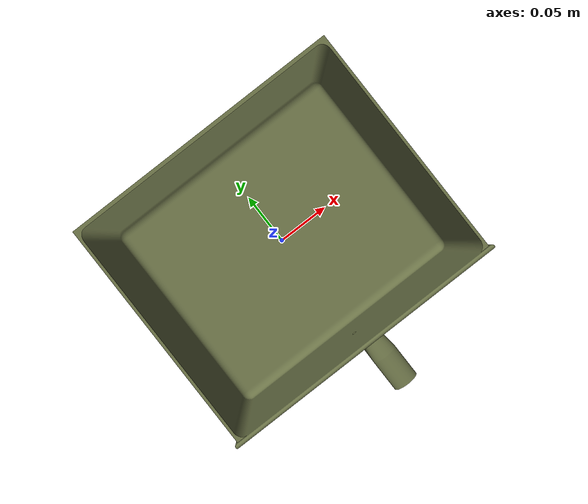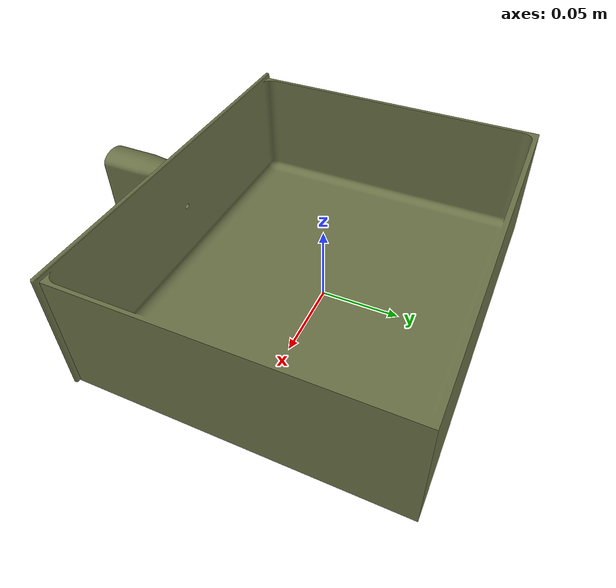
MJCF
<mujoco model="tray">
  <compiler meshdir="." angle="radian" autolimits="true"/>
  <default>
    <!-- Meshes are visual only: MuJoCo collides meshes as convex hulls, which would
         fill the tray solid. The box geoms below carry the contacts, the meshes the mass. -->
    <geom density="600" friction="0.5 0.02 0.001" solref="0.005 1" contype="0" conaffinity="0"/>
    <default class="collision">
      <geom type="box" mass="0" group="3" rgba="0 1 0.25 0.35" contype="1" conaffinity="1"/>
    </default>
  </default>

  <asset>
    <!-- inertia="exact": the tray is hollow, the convex-hull default would make it ~14x too heavy -->
    <mesh name="tray_body"   file="tray_body.stl"   scale="0.001 0.001 0.001" inertia="exact"/>
    <mesh name="tray_handle" file="tray_handle.stl" scale="0.001 0.001 0.001" inertia="exact"/>
    <material name="tray" rgba="0.42 0.45 0.28 1"/>
  </asset>

  <worldbody>
    <!-- Root origin = tray footprint center on the table surface. Place this asset at z=surface_z. -->
    <body name="root">
      <freejoint name="free"/>
      <geom type="mesh" mesh="tray_body"   material="tray" pos="-0.120 -0.100 0"/>
      <geom type="mesh" mesh="tray_handle" material="tray" pos="-0.12 -0.1 -0.088"
            euler="1.5708 0 0"/>

      <geom name="floor"      class="collision" pos="0 0 0.001"             size="0.1174 0.100 0.001"/>
      <geom name="wall_left"  class="collision" pos="-0.11625 0 0.03856"    size="0.00115 0.100 0.03856"/>
      <geom name="wall_right" class="collision" pos="0.11625 0 0.03856"     size="0.00115 0.100 0.03856"/>
      <geom name="wall_front" class="collision" pos="0 -0.0984 0.03995"     size="0.120 0.0016 0.03995"/>
      <geom name="wall_back"  class="collision" pos="0 0.0984 0.03856"      size="0.1174 0.0016 0.03856"/>
      <!-- handle fin: square approximation of the round-ended slab -->
      <geom name="handle"     class="collision" pos="0.008 -0.120 0.040"     size="0.010 0.0375 0.020"
            euler="1.5708 0 0"
            friction="1.2 0.05 0.005"/>

      <!-- grasp target: right half of the fin -->
      <site name="grasp" pos="0.0157 -0.1068 0.040" size="0.006" rgba="1 0.2 0.2 0" group="3"/>
    </body>
  </worldbody>
</mujoco>
